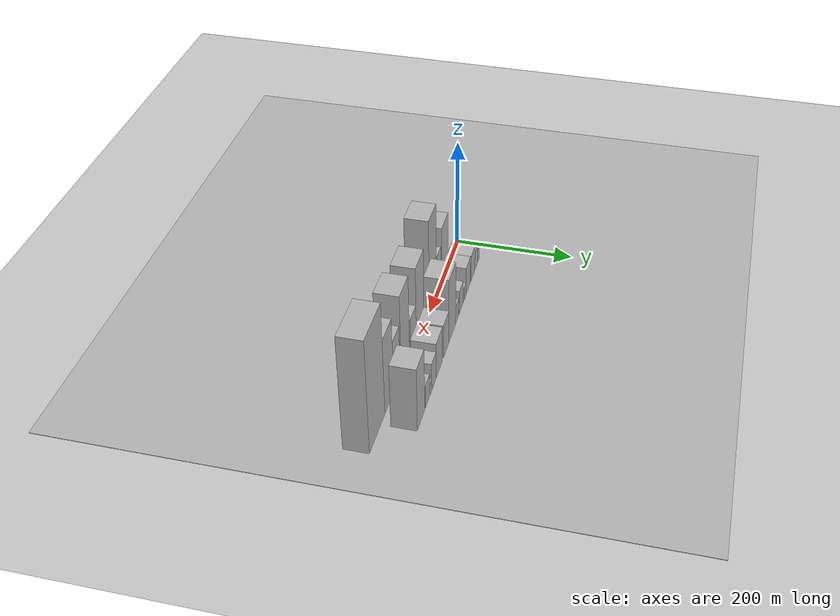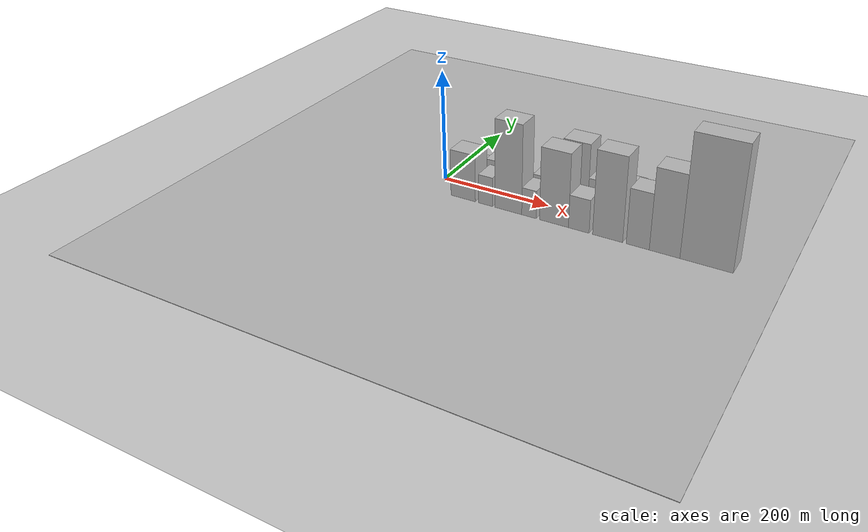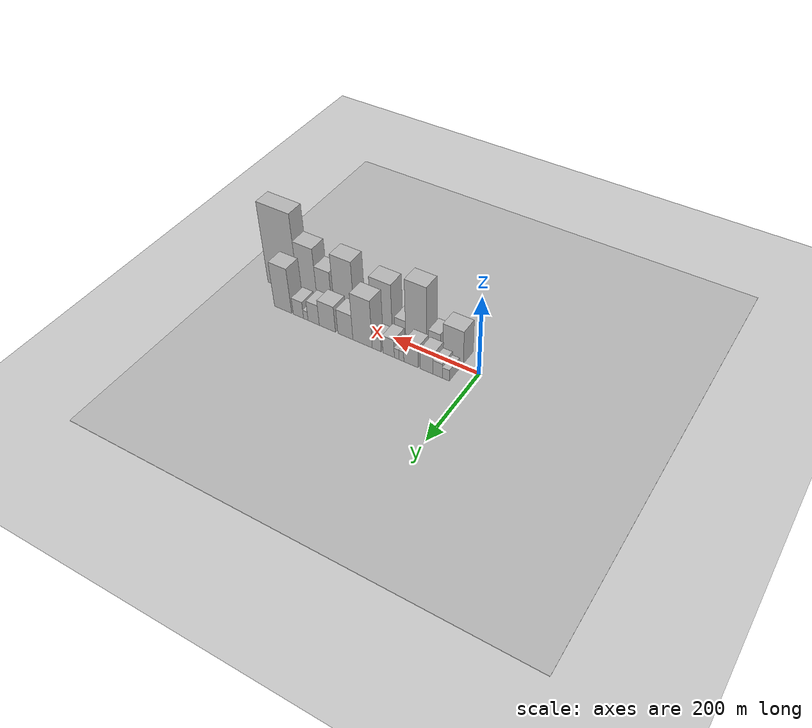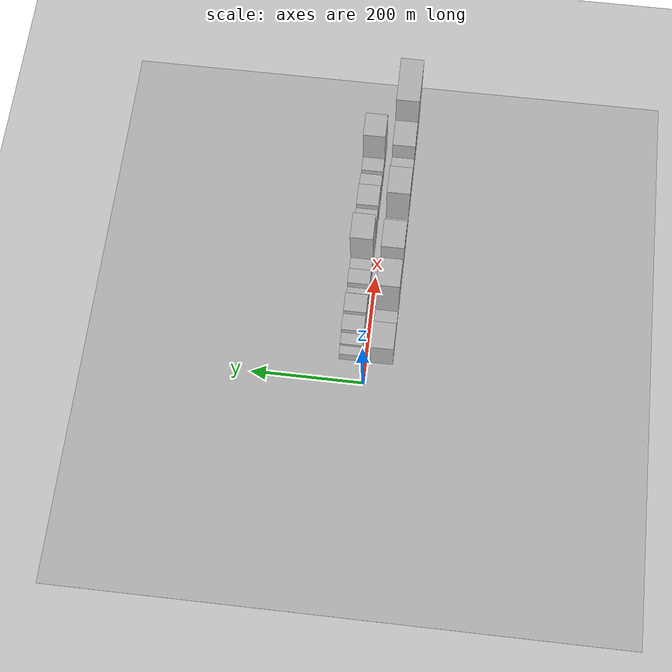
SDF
<?xml version="1.0" encoding="utf-8"?>

<sdf version="1.6">

   <world name="default">

      <gui fullscreen="0">

         <camera name="user_camera">

            <pose>-15 0 4.57585 0 0 0</pose>

            <view_controller>orbit</view_controller>

         </camera>

      </gui>

      <scene>

         <sky>

           <clouds>

             <speed>12</speed>

           </clouds>

         </sky>

         <ambient>0.4 0.4 0.4 1</ambient>

         <background>0.7 0.7 0.7 1</background>

         <shadows>1</shadows>

      </scene>

      <gravity>0 0 -9.8066</gravity>

      <magnetic_field>6e-06 2.3e-05 -4.2e-05</magnetic_field>

      <physics default="0" name="default_physics" type="ode">

         <ode>

            <solver>

               <type>quick</type>

               <iters>10</iters>

               <sor>1.0</sor>

               <use_dynamic_moi_rescaling>0</use_dynamic_moi_rescaling>

            </solver>

            <constraints>

               <cfm>0</cfm>

               <erp>0.2</erp>

               <contact_max_correcting_vel>100</contact_max_correcting_vel>

               <contact_surface_layer>0.001</contact_surface_layer>

            </constraints>

         </ode>

         <max_step_size>0.004</max_step_size>

         <real_time_factor>1</real_time_factor>

         <real_time_update_rate>250</real_time_update_rate>

      </physics>

      <light name="sun" type="directional">

         <cast_shadows>1</cast_shadows>

         <pose>0 0 10 0 0 0</pose>

         <diffuse>0.8 0.8 0.8 1</diffuse>

         <specular>0.2 0.2 0.2 1</specular>

         <attenuation>

            <range>1000</range>

            <constant>0.9</constant>

            <linear>0.01</linear>

            <quadratic>0.001</quadratic>

         </attenuation>

         <direction>-0.5 0.1 -0.9</direction>

      </light>

      <include>

         <name>ground_plane_1</name>

         <uri>model://HANNAS_ground_plane</uri>

         <pose>0 0 0  0 0 0</pose>

      </include>

      <include>

         <name>ground_plane_2</name>

         <uri>model://HANNAS_ground_plane</uri>

         <pose>100 0 0  0 0 0</pose>

      </include>

      <model name="building_1">

         <static>1</static>

         <pose frame="">48.1230 27.5000 0 0.000000 0.000000 1.570796</pose>

         <link name="link">

            <pose frame="">0 0 15.00 0 0 0</pose>

            <collision name="collision">

               <geometry>

                  <box>

                     <size>40.0000 16.2461 30.0000</size>

                  </box>

               </geometry>

               <max_contacts>10</max_contacts>

               <surface>

                  <contact>

                     <ode/>

                  </contact>

                  <bounce/>

                  <friction>

                     <torsional>

                        <ode/>

                     </torsional>

                     <ode/>

                  </friction>

               </surface>

            </collision>

            <visual name="visual">

               <cast_shadows>0</cast_shadows>

               <geometry>

                  <box>

                     <size>40.0000 16.2461 30.0000</size>

                  </box>

               </geometry>

               <material>

                  <script>

                     <uri>model://HANNAS_wall/materials/scripts</uri>

                     <uri>model://HANNAS_wall/materials/textures</uri>

                     <name>vrc/HANNAS_wall</name>

                  </script>

               </material>

            </visual>

            <self_collide>0</self_collide>

            <enable_wind>0</enable_wind>

            <kinematic>0</kinematic>

         </link>

      </model>

      <model name="building_2">

         <static>1</static>

         <pose frame="">66.7685 27.5000 0 0.000000 0.000000 1.570796</pose>

         <link name="link">

            <pose frame="">0 0 19.50 0 0 0</pose>

            <collision name="collision">

               <geometry>

                  <box>

                     <size>40.0000 21.0449 39.0000</size>

                  </box>

               </geometry>

               <max_contacts>10</max_contacts>

               <surface>

                  <contact>

                     <ode/>

                  </contact>

                  <bounce/>

                  <friction>

                     <torsional>

                        <ode/>

                     </torsional>

                     <ode/>

                  </friction>

               </surface>

            </collision>

            <visual name="visual">

               <cast_shadows>0</cast_shadows>

               <geometry>

                  <box>

                     <size>40.0000 21.0449 39.0000</size>

                  </box>

               </geometry>

               <material>

                  <script>

                     <uri>model://HANNAS_wall/materials/scripts</uri>

                     <uri>model://HANNAS_wall/materials/textures</uri>

                     <name>vrc/HANNAS_wall</name>

                  </script>

               </material>

            </visual>

            <self_collide>0</self_collide>

            <enable_wind>0</enable_wind>

            <kinematic>0</kinematic>

         </link>

      </model>

      <model name="building_3">

         <static>1</static>

         <pose frame="">92.1436 27.5000 0 0.000000 0.000000 1.570796</pose>

         <link name="link">

            <pose frame="">0 0 27.00 0 0 0</pose>

            <collision name="collision">

               <geometry>

                  <box>

                     <size>40.0000 29.7053 54.0000</size>

                  </box>

               </geometry>

               <max_contacts>10</max_contacts>

               <surface>

                  <contact>

                     <ode/>

                  </contact>

                  <bounce/>

                  <friction>

                     <torsional>

                        <ode/>

                     </torsional>

                     <ode/>

                  </friction>

               </surface>

            </collision>

            <visual name="visual">

               <cast_shadows>0</cast_shadows>

               <geometry>

                  <box>

                     <size>40.0000 29.7053 54.0000</size>

                  </box>

               </geometry>

               <material>

                  <script>

                     <uri>model://HANNAS_wall/materials/scripts</uri>

                     <uri>model://HANNAS_wall/materials/textures</uri>

                     <name>vrc/HANNAS_wall</name>

                  </script>

               </material>

            </visual>

            <self_collide>0</self_collide>

            <enable_wind>0</enable_wind>

            <kinematic>0</kinematic>

         </link>

      </model>

      <model name="building_4">

         <static>1</static>

         <pose frame="">127.8787 27.5000 0 0.000000 0.000000 1.570796</pose>

         <link name="link">

            <pose frame="">0 0 28.50 0 0 0</pose>

            <collision name="collision">

               <geometry>

                  <box>

                     <size>40.0000 33.7649 57.0000</size>

                  </box>

               </geometry>

               <max_contacts>10</max_contacts>

               <surface>

                  <contact>

                     <ode/>

                  </contact>

                  <bounce/>

                  <friction>

                     <torsional>

                        <ode/>

                     </torsional>

                     <ode/>

                  </friction>

               </surface>

            </collision>

            <visual name="visual">

               <cast_shadows>0</cast_shadows>

               <geometry>

                  <box>

                     <size>40.0000 33.7649 57.0000</size>

                  </box>

               </geometry>

               <material>

                  <script>

                     <uri>model://HANNAS_wall/materials/scripts</uri>

                     <uri>model://HANNAS_wall/materials/textures</uri>

                     <name>vrc/HANNAS_wall</name>

                  </script>

               </material>

            </visual>

            <self_collide>0</self_collide>

            <enable_wind>0</enable_wind>

            <kinematic>0</kinematic>

         </link>

      </model>

      <model name="building_5">

         <static>1</static>

         <pose frame="">150.4515 27.5000 0 0.000000 0.000000 1.570796</pose>

         <link name="link">

            <pose frame="">0 0 13.50 0 0 0</pose>

            <collision name="collision">

               <geometry>

                  <box>

                     <size>40.0000 11.3807 27.0000</size>

                  </box>

               </geometry>

               <max_contacts>10</max_contacts>

               <surface>

                  <contact>

                     <ode/>

                  </contact>

                  <bounce/>

                  <friction>

                     <torsional>

                        <ode/>

                     </torsional>

                     <ode/>

                  </friction>

               </surface>

            </collision>

            <visual name="visual">

               <cast_shadows>0</cast_shadows>

               <geometry>

                  <box>

                     <size>40.0000 11.3807 27.0000</size>

                  </box>

               </geometry>

               <material>

                  <script>

                     <uri>model://HANNAS_wall/materials/scripts</uri>

                     <uri>model://HANNAS_wall/materials/textures</uri>

                     <name>vrc/HANNAS_wall</name>

                  </script>

               </material>

            </visual>

            <self_collide>0</self_collide>

            <enable_wind>0</enable_wind>

            <kinematic>0</kinematic>

         </link>

      </model>

      <model name="building_6">

         <static>1</static>

         <pose frame="">161.6430 27.5000 0 0.000000 0.000000 1.570796</pose>

         <link name="link">

            <pose frame="">0 0 13.50 0 0 0</pose>

            <collision name="collision">

               <geometry>

                  <box>

                     <size>40.0000 11.0025 27.0000</size>

                  </box>

               </geometry>

               <max_contacts>10</max_contacts>

               <surface>

                  <contact>

                     <ode/>

                  </contact>

                  <bounce/>

                  <friction>

                     <torsional>

                        <ode/>

                     </torsional>

                     <ode/>

                  </friction>

               </surface>

            </collision>

            <visual name="visual">

               <cast_shadows>0</cast_shadows>

               <geometry>

                  <box>

                     <size>40.0000 11.0025 27.0000</size>

                  </box>

               </geometry>

               <material>

                  <script>

                     <uri>model://HANNAS_wall/materials/scripts</uri>

                     <uri>model://HANNAS_wall/materials/textures</uri>

                     <name>vrc/HANNAS_wall</name>

                  </script>

               </material>

            </visual>

            <self_collide>0</self_collide>

            <enable_wind>0</enable_wind>

            <kinematic>0</kinematic>

         </link>

      </model>

      <model name="building_7">

         <static>1</static>

         <pose frame="">180.7986 27.5000 0 0.000000 0.000000 1.570796</pose>

         <link name="link">

            <pose frame="">0 0 24.00 0 0 0</pose>

            <collision name="collision">

               <geometry>

                  <box>

                     <size>40.0000 27.3086 48.0000</size>

                  </box>

               </geometry>

               <max_contacts>10</max_contacts>

               <surface>

                  <contact>

                     <ode/>

                  </contact>

                  <bounce/>

                  <friction>

                     <torsional>

                        <ode/>

                     </torsional>

                     <ode/>

                  </friction>

               </surface>

            </collision>

            <visual name="visual">

               <cast_shadows>0</cast_shadows>

               <geometry>

                  <box>

                     <size>40.0000 27.3086 48.0000</size>

                  </box>

               </geometry>

               <material>

                  <script>

                     <uri>model://HANNAS_wall/materials/scripts</uri>

                     <uri>model://HANNAS_wall/materials/textures</uri>

                     <name>vrc/HANNAS_wall</name>

                  </script>

               </material>

            </visual>

            <self_collide>0</self_collide>

            <enable_wind>0</enable_wind>

            <kinematic>0</kinematic>

         </link>

      </model>

      <model name="building_8">

         <static>1</static>

         <pose frame="">209.1829 27.5000 0 0.000000 0.000000 1.570796</pose>

         <link name="link">

            <pose frame="">0 0 18.00 0 0 0</pose>

            <collision name="collision">

               <geometry>

                  <box>

                     <size>40.0000 21.4602 36.0000</size>

                  </box>

               </geometry>

               <max_contacts>10</max_contacts>

               <surface>

                  <contact>

                     <ode/>

                  </contact>

                  <bounce/>

                  <friction>

                     <torsional>

                        <ode/>

                     </torsional>

                     <ode/>

                  </friction>

               </surface>

            </collision>

            <visual name="visual">

               <cast_shadows>0</cast_shadows>

               <geometry>

                  <box>

                     <size>40.0000 21.4602 36.0000</size>

                  </box>

               </geometry>

               <material>

                  <script>

                     <uri>model://HANNAS_wall/materials/scripts</uri>

                     <uri>model://HANNAS_wall/materials/textures</uri>

                     <name>vrc/HANNAS_wall</name>

                  </script>

               </material>

            </visual>

            <self_collide>0</self_collide>

            <enable_wind>0</enable_wind>

            <kinematic>0</kinematic>

         </link>

      </model>

      <model name="building_9">

         <static>1</static>

         <pose frame="">243.4111 27.5000 0 0.000000 0.000000 1.570796</pose>

         <link name="link">

            <pose frame="">0 0 63.00 0 0 0</pose>

            <collision name="collision">

               <geometry>

                  <box>

                     <size>40.0000 46.9962 126.0000</size>

                  </box>

               </geometry>

               <max_contacts>10</max_contacts>

               <surface>

                  <contact>

                     <ode/>

                  </contact>

                  <bounce/>

                  <friction>

                     <torsional>

                        <ode/>

                     </torsional>

                     <ode/>

                  </friction>

               </surface>

            </collision>

            <visual name="visual">

               <cast_shadows>0</cast_shadows>

               <geometry>

                  <box>

                     <size>40.0000 46.9962 126.0000</size>

                  </box>

               </geometry>

               <material>

                  <script>

                     <uri>model://HANNAS_wall/materials/scripts</uri>

                     <uri>model://HANNAS_wall/materials/textures</uri>

                     <name>vrc/HANNAS_wall</name>

                  </script>

               </material>

            </visual>

            <self_collide>0</self_collide>

            <enable_wind>0</enable_wind>

            <kinematic>0</kinematic>

         </link>

      </model>

      <model name="building_10">

         <static>1</static>

         <pose frame="">285.4560 27.5000 0 0.000000 0.000000 1.570796</pose>

         <link name="link">

            <pose frame="">0 0 33.00 0 0 0</pose>

            <collision name="collision">

               <geometry>

                  <box>

                     <size>40.0000 37.0935 66.0000</size>

                  </box>

               </geometry>

               <max_contacts>10</max_contacts>

               <surface>

                  <contact>

                     <ode/>

                  </contact>

                  <bounce/>

                  <friction>

                     <torsional>

                        <ode/>

                     </torsional>

                     <ode/>

                  </friction>

               </surface>

            </collision>

            <visual name="visual">

               <cast_shadows>0</cast_shadows>

               <geometry>

                  <box>

                     <size>40.0000 37.0935 66.0000</size>

                  </box>

               </geometry>

               <material>

                  <script>

                     <uri>model://HANNAS_wall/materials/scripts</uri>

                     <uri>model://HANNAS_wall/materials/textures</uri>

                     <name>vrc/HANNAS_wall</name>

                  </script>

               </material>

            </visual>

            <self_collide>0</self_collide>

            <enable_wind>0</enable_wind>

            <kinematic>0</kinematic>

         </link>

      </model>

      <model name="building_11">

         <static>1</static>

         <pose frame="">330.2611 27.5000 0 0.000000 0.000000 1.570796</pose>

         <link name="link">

            <pose frame="">0 0 34.50 0 0 0</pose>

            <collision name="collision">

               <geometry>

                  <box>

                     <size>40.0000 40.5168 69.0000</size>

                  </box>

               </geometry>

               <max_contacts>10</max_contacts>

               <surface>

                  <contact>

                     <ode/>

                  </contact>

                  <bounce/>

                  <friction>

                     <torsional>

                        <ode/>

                     </torsional>

                     <ode/>

                  </friction>

               </surface>

            </collision>

            <visual name="visual">

               <cast_shadows>0</cast_shadows>

               <geometry>

                  <box>

                     <size>40.0000 40.5168 69.0000</size>

                  </box>

               </geometry>

               <material>

                  <script>

                     <uri>model://HANNAS_wall/materials/scripts</uri>

                     <uri>model://HANNAS_wall/materials/textures</uri>

                     <name>vrc/HANNAS_wall</name>

                  </script>

               </material>

            </visual>

            <self_collide>0</self_collide>

            <enable_wind>0</enable_wind>

            <kinematic>0</kinematic>

         </link>

      </model>

      <model name="building_12">

         <static>1</static>

         <pose frame="">364.8312 27.5000 0 0.000000 0.000000 1.570796</pose>

         <link name="link">

            <pose frame="">0 0 27.00 0 0 0</pose>

            <collision name="collision">

               <geometry>

                  <box>

                     <size>40.0000 28.6233 54.0000</size>

                  </box>

               </geometry>

               <max_contacts>10</max_contacts>

               <surface>

                  <contact>

                     <ode/>

                  </contact>

                  <bounce/>

                  <friction>

                     <torsional>

                        <ode/>

                     </torsional>

                     <ode/>

                  </friction>

               </surface>

            </collision>

            <visual name="visual">

               <cast_shadows>0</cast_shadows>

               <geometry>

                  <box>

                     <size>40.0000 28.6233 54.0000</size>

                  </box>

               </geometry>

               <material>

                  <script>

                     <uri>model://HANNAS_wall/materials/scripts</uri>

                     <uri>model://HANNAS_wall/materials/textures</uri>

                     <name>vrc/HANNAS_wall</name>

                  </script>

               </material>

            </visual>

            <self_collide>0</self_collide>

            <enable_wind>0</enable_wind>

            <kinematic>0</kinematic>

         </link>

      </model>

      <model name="building_13">

         <static>1</static>

         <pose frame="">384.7913 27.5000 0 0.000000 0.000000 1.570796</pose>

         <link name="link">

            <pose frame="">0 0 12.00 0 0 0</pose>

            <collision name="collision">

               <geometry>

                  <box>

                     <size>40.0000 11.2968 24.0000</size>

                  </box>

               </geometry>

               <max_contacts>10</max_contacts>

               <surface>

                  <contact>

                     <ode/>

                  </contact>

                  <bounce/>

                  <friction>

                     <torsional>

                        <ode/>

                     </torsional>

                     <ode/>

                  </friction>

               </surface>

            </collision>

            <visual name="visual">

               <cast_shadows>0</cast_shadows>

               <geometry>

                  <box>

                     <size>40.0000 11.2968 24.0000</size>

                  </box>

               </geometry>

               <material>

                  <script>

                     <uri>model://HANNAS_wall/materials/scripts</uri>

                     <uri>model://HANNAS_wall/materials/textures</uri>

                     <name>vrc/HANNAS_wall</name>

                  </script>

               </material>

            </visual>

            <self_collide>0</self_collide>

            <enable_wind>0</enable_wind>

            <kinematic>0</kinematic>

         </link>

      </model>

      <model name="building_14">

         <static>1</static>

         <pose frame="">403.7771 27.5000 0 0.000000 0.000000 1.570796</pose>

         <link name="link">

            <pose frame="">0 0 22.50 0 0 0</pose>

            <collision name="collision">

               <geometry>

                  <box>

                     <size>40.0000 26.6747 45.0000</size>

                  </box>

               </geometry>

               <max_contacts>10</max_contacts>

               <surface>

                  <contact>

                     <ode/>

                  </contact>

                  <bounce/>

                  <friction>

                     <torsional>

                        <ode/>

                     </torsional>

                     <ode/>

                  </friction>

               </surface>

            </collision>

            <visual name="visual">

               <cast_shadows>0</cast_shadows>

               <geometry>

                  <box>

                     <size>40.0000 26.6747 45.0000</size>

                  </box>

               </geometry>

               <material>

                  <script>

                     <uri>model://HANNAS_wall/materials/scripts</uri>

                     <uri>model://HANNAS_wall/materials/textures</uri>

                     <name>vrc/HANNAS_wall</name>

                  </script>

               </material>

            </visual>

            <self_collide>0</self_collide>

            <enable_wind>0</enable_wind>

            <kinematic>0</kinematic>

         </link>

      </model>

      <model name="building_15">

         <static>1</static>

         <pose frame="">443.5367 27.5000 0 0.000000 0.000000 1.570796</pose>

         <link name="link">

            <pose frame="">0 0 60.00 0 0 0</pose>

            <collision name="collision">

               <geometry>

                  <box>

                     <size>40.0000 44.8445 120.0000</size>

                  </box>

               </geometry>

               <max_contacts>10</max_contacts>

               <surface>

                  <contact>

                     <ode/>

                  </contact>

                  <bounce/>

                  <friction>

                     <torsional>

                        <ode/>

                     </torsional>

                     <ode/>

                  </friction>

               </surface>

            </collision>

            <visual name="visual">

               <cast_shadows>0</cast_shadows>

               <geometry>

                  <box>

                     <size>40.0000 44.8445 120.0000</size>

                  </box>

               </geometry>

               <material>

                  <script>

                     <uri>model://HANNAS_wall/materials/scripts</uri>

                     <uri>model://HANNAS_wall/materials/textures</uri>

                     <name>vrc/HANNAS_wall</name>

                  </script>

               </material>

            </visual>

            <self_collide>0</self_collide>

            <enable_wind>0</enable_wind>

            <kinematic>0</kinematic>

         </link>

      </model>

      <model name="building_16">

         <static>1</static>

         <pose frame="">63.6763 -27.5000 0 0.000000 0.000000 1.570796</pose>

         <link name="link">

            <pose frame="">0 0 43.50 0 0 0</pose>

            <collision name="collision">

               <geometry>

                  <box>

                     <size>40.0000 47.3526 87.0000</size>

                  </box>

               </geometry>

               <max_contacts>10</max_contacts>

               <surface>

                  <contact>

                     <ode/>

                  </contact>

                  <bounce/>

                  <friction>

                     <torsional>

                        <ode/>

                     </torsional>

                     <ode/>

                  </friction>

               </surface>

            </collision>

            <visual name="visual">

               <cast_shadows>0</cast_shadows>

               <geometry>

                  <box>

                     <size>40.0000 47.3526 87.0000</size>

                  </box>

               </geometry>

               <material>

                  <script>

                     <uri>model://HANNAS_wall/materials/scripts</uri>

                     <uri>model://HANNAS_wall/materials/textures</uri>

                     <name>vrc/HANNAS_wall</name>

                  </script>

               </material>

            </visual>

            <self_collide>0</self_collide>

            <enable_wind>0</enable_wind>

            <kinematic>0</kinematic>

         </link>

      </model>

      <model name="building_17">

         <static>1</static>

         <pose frame="">106.9784 -27.5000 0 0.000000 0.000000 1.570796</pose>

         <link name="link">

            <pose frame="">0 0 27.00 0 0 0</pose>

            <collision name="collision">

               <geometry>

                  <box>

                     <size>40.0000 27.2516 54.0000</size>

                  </box>

               </geometry>

               <max_contacts>10</max_contacts>

               <surface>

                  <contact>

                     <ode/>

                  </contact>

                  <bounce/>

                  <friction>

                     <torsional>

                        <ode/>

                     </torsional>

                     <ode/>

                  </friction>

               </surface>

            </collision>

            <visual name="visual">

               <cast_shadows>0</cast_shadows>

               <geometry>

                  <box>

                     <size>40.0000 27.2516 54.0000</size>

                  </box>

               </geometry>

               <material>

                  <script>

                     <uri>model://HANNAS_wall/materials/scripts</uri>

                     <uri>model://HANNAS_wall/materials/textures</uri>

                     <name>vrc/HANNAS_wall</name>

                  </script>

               </material>

            </visual>

            <self_collide>0</self_collide>

            <enable_wind>0</enable_wind>

            <kinematic>0</kinematic>

         </link>

      </model>

      <model name="building_18">

         <static>1</static>

         <pose frame="">149.5764 -27.5000 0 0.000000 0.000000 1.570796</pose>

         <link name="link">

            <pose frame="">0 0 81.00 0 0 0</pose>

            <collision name="collision">

               <geometry>

                  <box>

                     <size>40.0000 49.9445 162.0000</size>

                  </box>

               </geometry>

               <max_contacts>10</max_contacts>

               <surface>

                  <contact>

                     <ode/>

                  </contact>

                  <bounce/>

                  <friction>

                     <torsional>

                        <ode/>

                     </torsional>

                     <ode/>

                  </friction>

               </surface>

            </collision>

            <visual name="visual">

               <cast_shadows>0</cast_shadows>

               <geometry>

                  <box>

                     <size>40.0000 49.9445 162.0000</size>

                  </box>

               </geometry>

               <material>

                  <script>

                     <uri>model://HANNAS_wall/materials/scripts</uri>

                     <uri>model://HANNAS_wall/materials/textures</uri>

                     <name>vrc/HANNAS_wall</name>

                  </script>

               </material>

            </visual>

            <self_collide>0</self_collide>

            <enable_wind>0</enable_wind>

            <kinematic>0</kinematic>

         </link>

      </model>

      <model name="building_19">

         <static>1</static>

         <pose frame="">187.7367 -27.5000 0 0.000000 0.000000 1.570796</pose>

         <link name="link">

            <pose frame="">0 0 25.50 0 0 0</pose>

            <collision name="collision">

               <geometry>

                  <box>

                     <size>40.0000 26.3761 51.0000</size>

                  </box>

               </geometry>

               <max_contacts>10</max_contacts>

               <surface>

                  <contact>

                     <ode/>

                  </contact>

                  <bounce/>

                  <friction>

                     <torsional>

                        <ode/>

                     </torsional>

                     <ode/>

                  </friction>

               </surface>

            </collision>

            <visual name="visual">

               <cast_shadows>0</cast_shadows>

               <geometry>

                  <box>

                     <size>40.0000 26.3761 51.0000</size>

                  </box>

               </geometry>

               <material>

                  <script>

                     <uri>model://HANNAS_wall/materials/scripts</uri>

                     <uri>model://HANNAS_wall/materials/textures</uri>

                     <name>vrc/HANNAS_wall</name>

                  </script>

               </material>

            </visual>

            <self_collide>0</self_collide>

            <enable_wind>0</enable_wind>

            <kinematic>0</kinematic>

         </link>

      </model>

      <model name="building_20">

         <static>1</static>

         <pose frame="">232.6695 -27.5000 0 0.000000 0.000000 1.570796</pose>

         <link name="link">

            <pose frame="">0 0 66.00 0 0 0</pose>

            <collision name="collision">

               <geometry>

                  <box>

                     <size>40.0000 51.4894 132.0000</size>

                  </box>

               </geometry>

               <max_contacts>10</max_contacts>

               <surface>

                  <contact>

                     <ode/>

                  </contact>

                  <bounce/>

                  <friction>

                     <torsional>

                        <ode/>

                     </torsional>

                     <ode/>

                  </friction>

               </surface>

            </collision>

            <visual name="visual">

               <cast_shadows>0</cast_shadows>

               <geometry>

                  <box>

                     <size>40.0000 51.4894 132.0000</size>

                  </box>

               </geometry>

               <material>

                  <script>

                     <uri>model://HANNAS_wall/materials/scripts</uri>

                     <uri>model://HANNAS_wall/materials/textures</uri>

                     <name>vrc/HANNAS_wall</name>

                  </script>

               </material>

            </visual>

            <self_collide>0</self_collide>

            <enable_wind>0</enable_wind>

            <kinematic>0</kinematic>

         </link>

      </model>

      <model name="building_21">

         <static>1</static>

         <pose frame="">276.2769 -27.5000 0 0.000000 0.000000 1.570796</pose>

         <link name="link">

            <pose frame="">0 0 30.00 0 0 0</pose>

            <collision name="collision">

               <geometry>

                  <box>

                     <size>40.0000 35.7254 60.0000</size>

                  </box>

               </geometry>

               <max_contacts>10</max_contacts>

               <surface>

                  <contact>

                     <ode/>

                  </contact>

                  <bounce/>

                  <friction>

                     <torsional>

                        <ode/>

                     </torsional>

                     <ode/>

                  </friction>

               </surface>

            </collision>

            <visual name="visual">

               <cast_shadows>0</cast_shadows>

               <geometry>

                  <box>

                     <size>40.0000 35.7254 60.0000</size>

                  </box>

               </geometry>

               <material>

                  <script>

                     <uri>model://HANNAS_wall/materials/scripts</uri>

                     <uri>model://HANNAS_wall/materials/textures</uri>

                     <name>vrc/HANNAS_wall</name>

                  </script>

               </material>

            </visual>

            <self_collide>0</self_collide>

            <enable_wind>0</enable_wind>

            <kinematic>0</kinematic>

         </link>

      </model>

      <model name="building_22">

         <static>1</static>

         <pose frame="">325.4637 -27.5000 0 0.000000 0.000000 1.570796</pose>

         <link name="link">

            <pose frame="">0 0 75.00 0 0 0</pose>

            <collision name="collision">

               <geometry>

                  <box>

                     <size>40.0000 50.6482 150.0000</size>

                  </box>

               </geometry>

               <max_contacts>10</max_contacts>

               <surface>

                  <contact>

                     <ode/>

                  </contact>

                  <bounce/>

                  <friction>

                     <torsional>

                        <ode/>

                     </torsional>

                     <ode/>

                  </friction>

               </surface>

            </collision>

            <visual name="visual">

               <cast_shadows>0</cast_shadows>

               <geometry>

                  <box>

                     <size>40.0000 50.6482 150.0000</size>

                  </box>

               </geometry>

               <material>

                  <script>

                     <uri>model://HANNAS_wall/materials/scripts</uri>

                     <uri>model://HANNAS_wall/materials/textures</uri>

                     <name>vrc/HANNAS_wall</name>

                  </script>

               </material>

            </visual>

            <self_collide>0</self_collide>

            <enable_wind>0</enable_wind>

            <kinematic>0</kinematic>

         </link>

      </model>

      <model name="building_23">

         <static>1</static>

         <pose frame="">375.6747 -27.5000 0 0.000000 0.000000 1.570796</pose>

         <link name="link">

            <pose frame="">0 0 49.50 0 0 0</pose>

            <collision name="collision">

               <geometry>

                  <box>

                     <size>40.0000 37.7737 99.0000</size>

                  </box>

               </geometry>

               <max_contacts>10</max_contacts>

               <surface>

                  <contact>

                     <ode/>

                  </contact>

                  <bounce/>

                  <friction>

                     <torsional>

                        <ode/>

                     </torsional>

                     <ode/>

                  </friction>

               </surface>

            </collision>

            <visual name="visual">

               <cast_shadows>0</cast_shadows>

               <geometry>

                  <box>

                     <size>40.0000 37.7737 99.0000</size>

                  </box>

               </geometry>

               <material>

                  <script>

                     <uri>model://HANNAS_wall/materials/scripts</uri>

                     <uri>model://HANNAS_wall/materials/textures</uri>

                     <name>vrc/HANNAS_wall</name>

                  </script>

               </material>

            </visual>

            <self_collide>0</self_collide>

            <enable_wind>0</enable_wind>

            <kinematic>0</kinematic>

         </link>

      </model>

      <model name="building_24">

         <static>1</static>

         <pose frame="">418.9986 -27.5000 0 0.000000 0.000000 1.570796</pose>

         <link name="link">

            <pose frame="">0 0 72.00 0 0 0</pose>

            <collision name="collision">

               <geometry>

                  <box>

                     <size>40.0000 48.8742 144.0000</size>

                  </box>

               </geometry>

               <max_contacts>10</max_contacts>

               <surface>

                  <contact>

                     <ode/>

                  </contact>

                  <bounce/>

                  <friction>

                     <torsional>

                        <ode/>

                     </torsional>

                     <ode/>

                  </friction>

               </surface>

            </collision>

            <visual name="visual">

               <cast_shadows>0</cast_shadows>

               <geometry>

                  <box>

                     <size>40.0000 48.8742 144.0000</size>

                  </box>

               </geometry>

               <material>

                  <script>

                     <uri>model://HANNAS_wall/materials/scripts</uri>

                     <uri>model://HANNAS_wall/materials/textures</uri>

                     <name>vrc/HANNAS_wall</name>

                  </script>

               </material>

            </visual>

            <self_collide>0</self_collide>

            <enable_wind>0</enable_wind>

            <kinematic>0</kinematic>

         </link>

      </model>

      <model name="building_25">

         <static>1</static>

         <pose frame="">484.5175 -27.5000 0 0.000000 0.000000 1.570796</pose>

         <link name="link">

            <pose frame="">0 0 106.50 0 0 0</pose>

            <collision name="collision">

               <geometry>

                  <box>

                     <size>40.0000 82.1636 213.0000</size>

                  </box>

               </geometry>

               <max_contacts>10</max_contacts>

               <surface>

                  <contact>

                     <ode/>

                  </contact>

                  <bounce/>

                  <friction>

                     <torsional>

                        <ode/>

                     </torsional>

                     <ode/>

                  </friction>

               </surface>

            </collision>

            <visual name="visual">

               <cast_shadows>0</cast_shadows>

               <geometry>

                  <box>

                     <size>40.0000 82.1636 213.0000</size>

                  </box>

               </geometry>

               <material>

                  <script>

                     <uri>model://HANNAS_wall/materials/scripts</uri>

                     <uri>model://HANNAS_wall/materials/textures</uri>

                     <name>vrc/HANNAS_wall</name>

                  </script>

               </material>

            </visual>

            <self_collide>0</self_collide>

            <enable_wind>0</enable_wind>

            <kinematic>0</kinematic>

         </link>

      </model>

   </world>

</sdf>

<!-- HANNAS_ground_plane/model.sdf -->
<sdf version="1.4">
<model name="HANNAS_ground_plane">
  <static>true</static>
    <link name="link">
      <collision name="collision">
        <geometry>
          <plane>
            <normal>0 0 1</normal>
            <size>1000 1000</size>
          </plane>
        </geometry>
        <surface>
          <friction>
            <ode>
              <mu>100</mu>
              <mu2>50</mu2>
            </ode>
          </friction>
        </surface>
      </collision>
      <visual name="visual">
        <cast_shadows>false</cast_shadows>
        <geometry>
          <plane>
            <normal>0 0 1</normal>
            <size>1000 1000</size>
          </plane>
        </geometry>
        <material>
          <script>
            <uri>model://HANNAS_ground_plane/materials/scripts/HANNAS_ground_plane.material</uri>
	    <uri>model://HANNAS_ground_plane/materials/textures</uri>
            <name>HANNASGroundPlane/Image</name>
          </script>
        </material>
      </visual>
    </link>
  </model>
</sdf>
